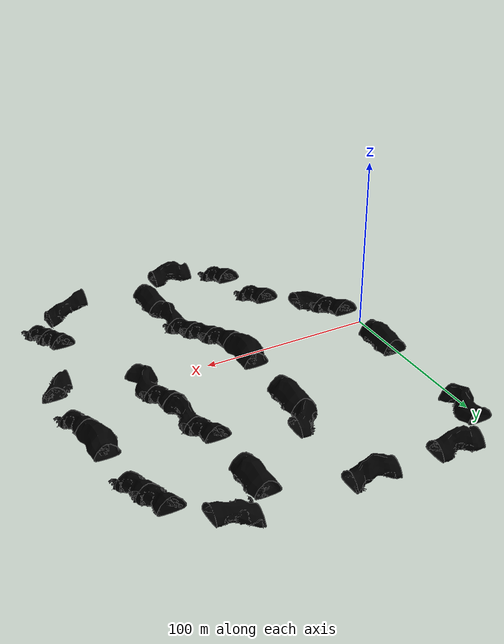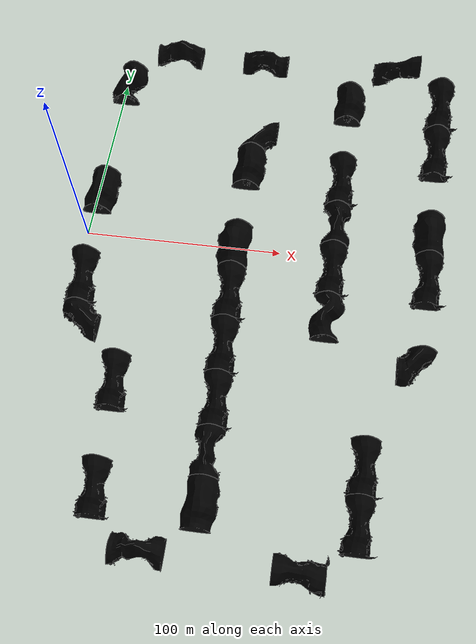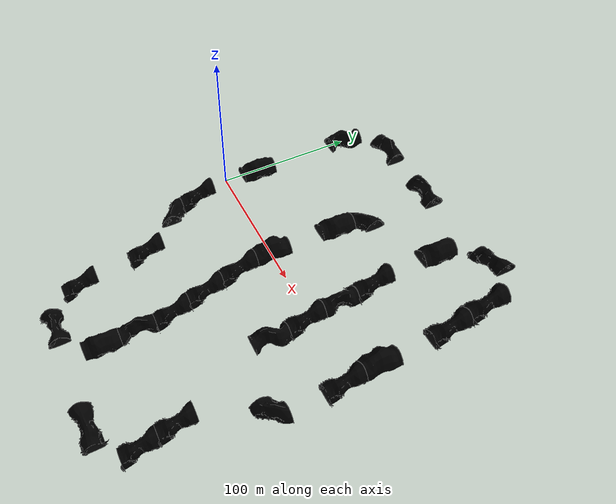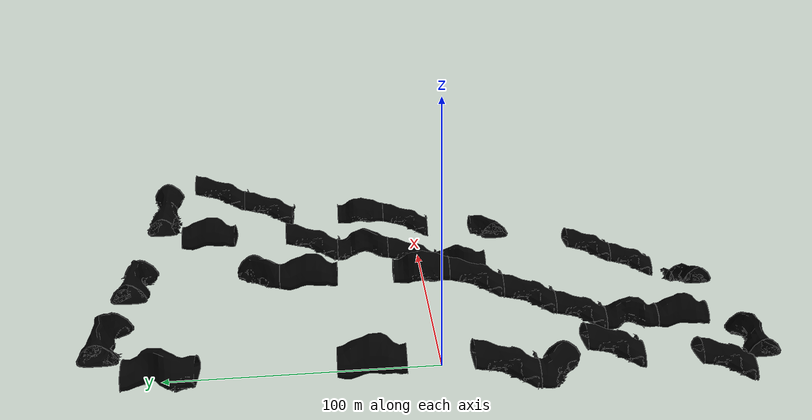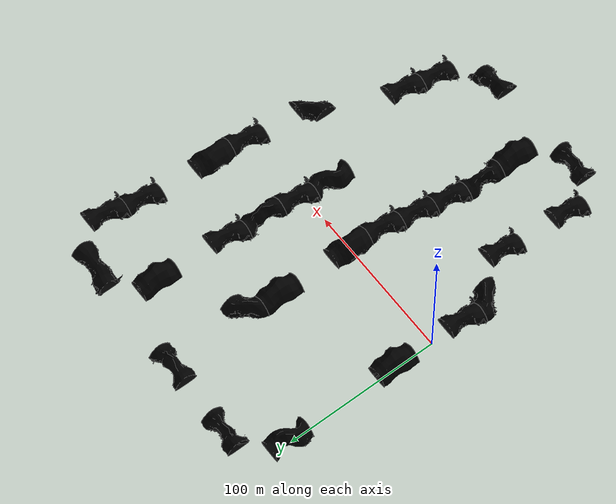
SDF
<sdf version="1.9">
 <world name="cave">
  <physics type="ode">
   <max_step_size>0.004</max_step_size>
   <real_time_factor>1.0</real_time_factor>
   <real_time_update_rate>250</real_time_update_rate>
  </physics>
  <gravity>0 0 -9.8</gravity>
  <magnetic_field>6e-06 2.3e-05 -4.2e-05</magnetic_field>
  <atmosphere type="adiabatic"/>
  <scene>
   <grid>false</grid>
   <ambient>0.1 0.1 0.1 1</ambient>
   <background>0 0 0 1</background>
   <shadows>true</shadows>
  </scene>
  <light name="sunUTC" type="directional">
   <pose>0 0 500 0 -0 0</pose>
   <intensity>1</intensity>
   <direction>0.001 0.625 -0.78</direction>
   <diffuse>0.904 0.904 0.904 1</diffuse>
   <specular>0.271 0.271 0.271 1</specular>
   <attenuation><range>2000</range><linear>0</linear><constant>1</constant><quadratic>0</quadratic></attenuation>
  </light>
  <include>
   <name>tile_3</name>
   <uri>https://fuel.ignitionrobotics.org/1.0/OpenRobotics/models/Cave Straight 02 Type B</uri>
   <pose>27 125.5 -0.28 0 0 1.570796</pose>
  </include>
  <include>
   <name>tile_5</name>
   <uri>https://fuel.ignitionrobotics.org/1.0/OpenRobotics/models/Cave Straight 02 Type B</uri>
   <pose>77 125.5 -0.28 0 0 -1.570796</pose>
  </include>
  <include>
   <name>tile_8</name>
   <uri>https://fuel.ignitionrobotics.org/1.0/OpenRobotics/models/Cave Elevation Type B</uri>
   <pose>152 125.5 -0.28 0 0 1.570796</pose>
  </include>
  <include>
   <name>tile_11</name>
   <uri>https://fuel.ignitionrobotics.org/1.0/OpenRobotics/models/Cave Straight 03 Type B</uri>
   <pose>2 100.5 -0.28 0 0 0.000000</pose>
  </include>
  <include>
   <name>tile_12</name>
   <uri>https://fuel.ignitionrobotics.org/1.0/OpenRobotics/models/Cave Straight 04 Type B</uri>
   <pose>127 100.5 -0.28 0 0 3.141593</pose>
  </include>
  <include>
   <name>tile_13</name>
   <uri>https://fuel.ignitionrobotics.org/1.0/OpenRobotics/models/Cave Elevation Type B</uri>
   <pose>177 100.5 -0.28 0 0 3.141593</pose>
  </include>
  <include>
   <name>tile_15</name>
   <uri>https://fuel.ignitionrobotics.org/1.0/OpenRobotics/models/Cave Corner 02 Type B</uri>
   <pose>77 75.5 -0.28 0 0 -3.141593</pose>
  </include>
  <include>
   <name>tile_18</name>
   <uri>https://fuel.ignitionrobotics.org/1.0/OpenRobotics/models/Cave Elevation Type B</uri>
   <pose>177 75.5 -10.28 0 0 3.141593</pose>
  </include>
  <include>
   <name>tile_20</name>
   <uri>https://fuel.ignitionrobotics.org/1.0/OpenRobotics/models/Cave Straight 04 Type B</uri>
   <pose>77 50.5 -0.28 0 0 3.141593</pose>
  </include>
  <include>
   <name>tile_21</name>
   <uri>https://fuel.ignitionrobotics.org/1.0/OpenRobotics/models/Cave Elevation Type B</uri>
   <pose>127 50.5 -10.28 0 0 3.141593</pose>
  </include>
  <include>
   <name>tile_23</name>
   <uri>https://fuel.ignitionrobotics.org/1.0/OpenRobotics/models/Cave Straight 04 Type B</uri>
   <pose>2 25.5 -0.28 0 0 3.141593</pose>
  </include>
  <include>
   <name>tile_25</name>
   <uri>https://fuel.ignitionrobotics.org/1.0/OpenRobotics/models/Cave Straight 02 Type B</uri>
   <pose>127 25.5 -10.28 0 0 0.000000</pose>
  </include>
  <include>
   <name>tile_26</name>
   <uri>https://fuel.ignitionrobotics.org/1.0/OpenRobotics/models/Cave Straight 04 Type B</uri>
   <pose>177 25.5 -10.28 0 0 0.000000</pose>
  </include>
  <include>
   <name>tile_28</name>
   <uri>https://fuel.ignitionrobotics.org/1.0/OpenRobotics/models/Cave Straight 04 Type B</uri>
   <pose>77 0.5 -0.28 0 0 0.000000</pose>
  </include>
  <include>
   <name>tile_29</name>
   <uri>https://fuel.ignitionrobotics.org/1.0/OpenRobotics/models/Cave Elevation Type B</uri>
   <pose>127 0.5 -20.28 0 0 3.141593</pose>
  </include>
  <include>
   <name>tile_30</name>
   <uri>https://fuel.ignitionrobotics.org/1.0/OpenRobotics/models/Cave Elevation Type B</uri>
   <pose>177 0.5 -20.28 0 0 3.141593</pose>
  </include>
  <include>
   <name>tile_31</name>
   <uri>https://fuel.ignitionrobotics.org/1.0/OpenRobotics/models/Cave Elevation Type B</uri>
   <pose>2 -24.5 -10.28 0 0 3.141593</pose>
  </include>
  <include>
   <name>tile_32</name>
   <uri>https://fuel.ignitionrobotics.org/1.0/OpenRobotics/models/Cave Elevation Type B</uri>
   <pose>77 -24.5 -10.28 0 0 3.141593</pose>
  </include>
  <include>
   <name>tile_33</name>
   <uri>https://fuel.ignitionrobotics.org/1.0/OpenRobotics/models/Cave Straight 03 Type B</uri>
   <pose>127 -24.5 -20.28 0 0 3.141593</pose>
  </include>
  <include>
   <name>tile_35</name>
   <uri>https://fuel.ignitionrobotics.org/1.0/OpenRobotics/models/Cave Corner 02 Type B</uri>
   <pose>2 -49.5 -10.28 0 0 -1.570796</pose>
  </include>
  <include>
   <name>tile_37</name>
   <uri>https://fuel.ignitionrobotics.org/1.0/OpenRobotics/models/Cave Elevation Type B</uri>
   <pose>77 -49.5 -20.28 0 0 3.141593</pose>
  </include>
  <include>
   <name>tile_40</name>
   <uri>https://fuel.ignitionrobotics.org/1.0/OpenRobotics/models/Cave Corner 02 Type B</uri>
   <pose>177 -49.5 -20.28 0 0 0.000000</pose>
  </include>
  <include>
   <name>tile_41</name>
   <uri>https://fuel.ignitionrobotics.org/1.0/OpenRobotics/models/Cave Elevation Type B</uri>
   <pose>27 -74.5 -20.28 0 0 3.141593</pose>
  </include>
  <include>
   <name>tile_42</name>
   <uri>https://fuel.ignitionrobotics.org/1.0/OpenRobotics/models/Cave Elevation Type B</uri>
   <pose>77 -74.5 -30.28 0 0 3.141593</pose>
  </include>
  <include>
   <name>tile_45</name>
   <uri>https://fuel.ignitionrobotics.org/1.0/OpenRobotics/models/Cave Straight 02 Type B</uri>
   <pose>77 -99.5 -30.28 0 0 3.141593</pose>
  </include>
  <include>
   <name>tile_46</name>
   <uri>https://fuel.ignitionrobotics.org/1.0/OpenRobotics/models/Cave Elevation Type B</uri>
   <pose>152 -99.5 -30.28 0 0 3.141593</pose>
  </include>
  <include>
   <name>tile_47</name>
   <uri>https://fuel.ignitionrobotics.org/1.0/OpenRobotics/models/Cave Elevation Type B</uri>
   <pose>27 -124.5 -30.28 0 0 3.141593</pose>
  </include>
  <include>
   <name>tile_48</name>
   <uri>https://fuel.ignitionrobotics.org/1.0/OpenRobotics/models/Cave Straight 04 Type B</uri>
   <pose>77 -124.5 -30.28 0 0 3.141593</pose>
  </include>
  <include>
   <name>tile_49</name>
   <uri>https://fuel.ignitionrobotics.org/1.0/OpenRobotics/models/Cave Elevation Type B</uri>
   <pose>152 -124.5 -40.28 0 0 3.141593</pose>
  </include>
  <include>
   <name>tile_51</name>
   <uri>https://fuel.ignitionrobotics.org/1.0/OpenRobotics/models/Cave Straight 02 Type B</uri>
   <pose>52 -149.5 -30.28 0 0 1.570796</pose>
  </include>
  <include>
   <name>tile_54</name>
   <uri>https://fuel.ignitionrobotics.org/1.0/OpenRobotics/models/Cave Elevation Type B</uri>
   <pose>127 -149.5 -40.28 0 0 -1.570796</pose>
  </include>
  <spherical_coordinates>
   <surface_model>EARTH_WGS84</surface_model>
   <world_frame_orientation>ENU</world_frame_orientation>
   <latitude_deg>47.397971057728974</latitude_deg>
   <longitude_deg>8.546163739800146</longitude_deg>
   <elevation>0</elevation>
  </spherical_coordinates>
 </world>
</sdf>

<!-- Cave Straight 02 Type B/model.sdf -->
<sdf version="1.6">
  <model name="Cave Straight 02 Type B">
    <static>true</static>
    <link name="base_link">
      <collision name="collision">
        <pose>0 0 0 0 0 0</pose>
        <geometry>
          <mesh>
            <uri>model://Cave Straight 02 Type B/meshes/cavestraight02.dae</uri>
            <scale>1.005 1.005 1.0</scale>
          </mesh>
        </geometry>
      </collision>
      <visual name="StriatedRock_visual">
        <geometry>
          <mesh>
            <uri>model://Cave Straight 02 Type B/meshes/cavestraight02.dae</uri>
            <scale>1.005 1.005 1.0</scale>
            <submesh>
              <name>StriatedRock</name>
              <center>false</center>
            </submesh>
          </mesh>
        </geometry>
        <material>
          <diffuse>0 0 0 1</diffuse>
          <specular>0 0 0 1</specular>
          <pbr>
            <metal>
              <albedo_map>model://Cave Straight 02 Type B/materials/textures/StriatedRock_Albedo.png</albedo_map>
              <normal_map>model://Cave Straight 02 Type B/materials/textures/StriatedRock_Normal.png</normal_map>
              <roughness_map>model://Cave Straight 02 Type B/materials/textures/StriatedRock_Roughness.png</roughness_map>
            </metal>
          </pbr>

          <script>
            <uri>model://Cave Straight 02 Type B/materials/scripts/</uri>
            <uri>model://Cave Straight 02 Type B/materials/textures/</uri>
            <name>CaveTile/StriatedRock_Diffuse</name>
          </script>
        </material>
      </visual>
      <visual name="RockPile_visual">
        <geometry>
          <mesh>
            <uri>model://Cave Straight 02 Type B/meshes/cavestraight02.dae</uri>
            <scale>1.005 1.005 1.0</scale>
            <submesh>
              <name>RockPile</name>
              <center>false</center>
            </submesh>
          </mesh>
        </geometry>
        <material>
          <diffuse>0 0 0 1</diffuse>
          <specular>0 0 0 1</specular>
          <pbr>
            <metal>
              <albedo_map>model://Cave Straight 02 Type B/materials/textures/RockPile_Albedo.png</albedo_map>
              <normal_map>model://Cave Straight 02 Type B/materials/textures/RockPile_Normal.png</normal_map>
              <roughness_map>model://Cave Straight 02 Type B/materials/textures/RockPile_Roughness.png</roughness_map>
            </metal>
          </pbr>

          <script>
            <uri>model://Cave Straight 02 Type B/materials/scripts/</uri>
            <uri>model://Cave Straight 02 Type B/materials/textures/</uri>
            <name>CaveTile/RockPile_Diffuse</name>
          </script>
        </material>
      </visual>
      <visual name="CaveWall_visual">
        <geometry>
          <mesh>
            <uri>model://Cave Straight 02 Type B/meshes/cavestraight02.dae</uri>
            <scale>1.005 1.005 1.0</scale>
            <submesh>
              <name>CaveWall</name>
              <center>false</center>
            </submesh>
          </mesh>
        </geometry>
        <material>
          <diffuse>0 0 0 1</diffuse>
          <specular>0 0 0 1</specular>
          <pbr>
            <metal>
              <albedo_map>model://Cave Straight 02 Type B/materials/textures/CaveWall_Albedo.png</albedo_map>
              <normal_map>model://Cave Straight 02 Type B/materials/textures/CaveWall_Normal.png</normal_map>
              <roughness_map>model://Cave Straight 02 Type B/materials/textures/CaveWall_Roughness.png</roughness_map>
            </metal>
          </pbr>

          <script>
            <uri>model://Cave Straight 02 Type B/materials/scripts/</uri>
            <uri>model://Cave Straight 02 Type B/materials/textures/</uri>
            <name>CaveTile/CaveWall_Diffuse</name>
          </script>
        </material>
      </visual>
    </link>
  </model>
</sdf>

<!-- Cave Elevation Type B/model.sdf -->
<sdf version="1.6">
  <model name="Cave Elevation Type B">
    <static>true</static>
    <link name="base_link">
      <collision name="collision">
        <pose>0 0 0 0 0 0</pose>
        <geometry>
          <mesh>
            <uri>model://Cave Elevation Type B/meshes/caveelevation.dae</uri>
            <scale>1.0 1.0 1.0</scale>
          </mesh>
        </geometry>
      </collision>
      <visual name="CaveWall_visual">
        <geometry>
          <mesh>
            <uri>model://Cave Elevation Type B/meshes/caveelevation.dae</uri>
            <submesh>
              <name>CaveWall</name>
              <center>false</center>
            </submesh>
          </mesh>
        </geometry>
        <material>
          <diffuse>0 0 0 1</diffuse>
          <specular>0 0 0 1</specular>
          <pbr>
            <metal>
              <albedo_map>model://Cave Elevation Type B/materials/textures/CaveWall_Albedo.png</albedo_map>
              <normal_map>model://Cave Elevation Type B/materials/textures/CaveWall_Normal.png</normal_map>
              <roughness_map>model://Cave Elevation Type B/materials/textures/CaveWall_Roughness.png</roughness_map>
            </metal>
          </pbr>

          <script>
            <uri>model://Cave Elevation Type B/materials/scripts/</uri>
            <uri>model://Cave Elevation Type B/materials/textures/</uri>
            <name>CaveTile/CaveWall_Diffuse</name>
          </script>
        </material>
      </visual>
      <visual name="RockPile_visual">
        <geometry>
          <mesh>
            <uri>model://Cave Elevation Type B/meshes/caveelevation.dae</uri>
            <submesh>
              <name>RockPile</name>
              <center>false</center>
            </submesh>
          </mesh>
        </geometry>
        <material>
          <diffuse>0 0 0 1</diffuse>
          <specular>0 0 0 1</specular>
          <pbr>
            <metal>
              <albedo_map>model://Cave Elevation Type B/materials/textures/RockPile_Albedo.png</albedo_map>
              <normal_map>model://Cave Elevation Type B/materials/textures/RockPile_Normal.png</normal_map>
              <roughness_map>model://Cave Elevation Type B/materials/textures/RockPile_Roughness.png</roughness_map>
            </metal>
          </pbr>

          <script>
            <uri>model://Cave Elevation Type B/materials/scripts/</uri>
            <uri>model://Cave Elevation Type B/materials/textures/</uri>
            <name>CaveTile/RockPile_Diffuse</name>
          </script>
        </material>
      </visual>
      <visual name="StriatedRock_visual">
        <geometry>
          <mesh>
            <uri>model://Cave Elevation Type B/meshes/caveelevation.dae</uri>
            <submesh>
              <name>StriatedRock</name>
              <center>false</center>
            </submesh>
          </mesh>
        </geometry>
        <material>
          <diffuse>0 0 0 1</diffuse>
          <specular>0 0 0 1</specular>
          <pbr>
            <metal>
              <albedo_map>model://Cave Elevation Type B/materials/textures/StriatedRock_Albedo.png</albedo_map>
              <normal_map>model://Cave Elevation Type B/materials/textures/StriatedRock_Normal.png</normal_map>
              <roughness_map>model://Cave Elevation Type B/materials/textures/StriatedRock_Roughness.png</roughness_map>
            </metal>
          </pbr>

          <script>
            <uri>model://Cave Elevation Type B/materials/scripts/</uri>
            <uri>model://Cave Elevation Type B/materials/textures/</uri>
            <name>CaveTile/StriatedRock_Diffuse</name>
          </script>
        </material>
      </visual>
    </link>

    <plugin filename="libignition-gazebo-performer-detector-system.so" name="ignition::gazebo::systems::PerformerDetector">
      <topic>/subt_performer_detector</topic>
      <pose>0 0 10 0 0 0</pose>
      <geometry>
        <box>
          <size>20 30 20</size>
        </box>
      </geometry>
      <header_data>
        <key>type</key>
        <value>elevation</value>
      </header_data>
    </plugin>
  </model>
</sdf>

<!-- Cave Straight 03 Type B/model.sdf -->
<sdf version="1.6">
  <model name="Cave Straight 03 Type B">
    <static>true</static>
    <link name="base_link">
      <collision name="collision">
        <pose>0 0 0 0 0 0</pose>
        <geometry>
          <mesh>
            <uri>model://Cave Straight 03 Type B/meshes/cavestraight03.dae</uri>
            <scale>1.005 1.005 1.0</scale>
          </mesh>
        </geometry>
      </collision>
      <visual name="StriatedRock_visual">
        <geometry>
          <mesh>
            <uri>model://Cave Straight 03 Type B/meshes/cavestraight03.dae</uri>
            <submesh>
              <name>StriatedRock</name>
              <center>false</center>
            </submesh>
            <scale>1.005 1.005 1.0</scale>
          </mesh>
        </geometry>
        <material>
          <diffuse>0 0 0 1</diffuse>
          <specular>0 0 0 1</specular>
          <pbr>
            <metal>
              <albedo_map>model://Cave Straight 03 Type B/materials/textures/StriatedRock_Albedo.png</albedo_map>
              <normal_map>model://Cave Straight 03 Type B/materials/textures/StriatedRock_Normal.png</normal_map>
              <roughness_map>model://Cave Straight 03 Type B/materials/textures/StriatedRock_Roughness.png</roughness_map>
            </metal>
          </pbr>

          <script>
            <uri>model://Cave Straight 03 Type B/materials/scripts/</uri>
            <uri>model://Cave Straight 03 Type B/materials/textures/</uri>
            <name>CaveTile/StriatedRock_Diffuse</name>
          </script>
        </material>
      </visual>
      <visual name="RockPile_visual">
        <geometry>
          <mesh>
            <uri>model://Cave Straight 03 Type B/meshes/cavestraight03.dae</uri>
            <submesh>
              <name>RockPile</name>
              <center>false</center>
            </submesh>
            <scale>1.005 1.005 1.0</scale>
          </mesh>
        </geometry>
        <material>
          <diffuse>0 0 0 1</diffuse>
          <specular>0 0 0 1</specular>
          <pbr>
            <metal>
              <albedo_map>model://Cave Straight 03 Type B/materials/textures/RockPile_Albedo.png</albedo_map>
              <normal_map>model://Cave Straight 03 Type B/materials/textures/RockPile_Normal.png</normal_map>
              <roughness_map>model://Cave Straight 03 Type B/materials/textures/RockPile_Roughness.png</roughness_map>
            </metal>
          </pbr>

          <script>
            <uri>model://Cave Straight 03 Type B/materials/scripts/</uri>
            <uri>model://Cave Straight 03 Type B/materials/textures/</uri>
            <name>CaveTile/RockPile_Diffuse</name>
          </script>
        </material>
      </visual>
      <visual name="CaveWall_visual">
        <geometry>
          <mesh>
            <uri>model://Cave Straight 03 Type B/meshes/cavestraight03.dae</uri>
            <submesh>
              <name>CaveWall</name>
              <center>false</center>
            </submesh>
            <scale>1.005 1.005 1.0</scale>
          </mesh>
        </geometry>
        <material>
          <diffuse>0 0 0 1</diffuse>
          <specular>0 0 0 1</specular>
          <pbr>
            <metal>
              <albedo_map>model://Cave Straight 03 Type B/materials/textures/CaveWall_Albedo.png</albedo_map>
              <normal_map>model://Cave Straight 03 Type B/materials/textures/CaveWall_Normal.png</normal_map>
              <roughness_map>model://Cave Straight 03 Type B/materials/textures/CaveWall_Roughness.png</roughness_map>
            </metal>
          </pbr>

          <script>
            <uri>model://Cave Straight 03 Type B/materials/scripts/</uri>
            <uri>model://Cave Straight 03 Type B/materials/textures/</uri>
            <name>CaveTile/CaveWall_Diffuse</name>
          </script>
        </material>
      </visual>
    </link>
  </model>
</sdf>

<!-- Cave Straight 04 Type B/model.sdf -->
<sdf version="1.6">
  <model name="Cave Straight 04 Type B">
    <static>true</static>
    <link name="base_link">
      <collision name="collision">
        <pose>0 0 0 0 0 0</pose>
        <geometry>
          <mesh>
            <uri>model://Cave Straight 04 Type B/meshes/cavestraight04.dae</uri>
            <scale>1.0 1.0 1.0</scale>
          </mesh>
        </geometry>
      </collision>
      <visual name="StriatedRock_visual">
        <geometry>
          <mesh>
            <uri>model://Cave Straight 04 Type B/meshes/cavestraight04.dae</uri>
            <submesh>
              <name>StriatedRock</name>
              <center>false</center>
            </submesh>
          </mesh>
        </geometry>
        <material>
          <diffuse>0 0 0 1</diffuse>
          <specular>0 0 0 1</specular>
          <pbr>
            <metal>
              <albedo_map>model://Cave Straight 04 Type B/materials/textures/StriatedRock_Albedo.png</albedo_map>
              <normal_map>model://Cave Straight 04 Type B/materials/textures/StriatedRock_Normal.png</normal_map>
              <roughness_map>model://Cave Straight 04 Type B/materials/textures/StriatedRock_Roughness.png</roughness_map>
            </metal>
          </pbr>

          <script>
            <uri>model://Cave Straight 04 Type B/materials/scripts/</uri>
            <uri>model://Cave Straight 04 Type B/materials/textures/</uri>
            <name>CaveTile/StriatedRock_Diffuse</name>
          </script>
        </material>
      </visual>
      <visual name="RockPile_visual">
        <geometry>
          <mesh>
            <uri>model://Cave Straight 04 Type B/meshes/cavestraight04.dae</uri>
            <submesh>
              <name>RockPile</name>
              <center>false</center>
            </submesh>
          </mesh>
        </geometry>
        <material>
          <diffuse>0 0 0 1</diffuse>
          <specular>0 0 0 1</specular>
          <pbr>
            <metal>
              <albedo_map>model://Cave Straight 04 Type B/materials/textures/RockPile_Albedo.png</albedo_map>
              <normal_map>model://Cave Straight 04 Type B/materials/textures/RockPile_Normal.png</normal_map>
              <roughness_map>model://Cave Straight 04 Type B/materials/textures/RockPile_Roughness.png</roughness_map>
            </metal>
          </pbr>

          <script>
            <uri>model://Cave Straight 04 Type B/materials/scripts/</uri>
            <uri>model://Cave Straight 04 Type B/materials/textures/</uri>
            <name>CaveTile/RockPile_Diffuse</name>
          </script>
        </material>
      </visual>
      <visual name="CaveWall_visual">
        <geometry>
          <mesh>
            <uri>model://Cave Straight 04 Type B/meshes/cavestraight04.dae</uri>
            <submesh>
              <name>CaveWall</name>
              <center>false</center>
            </submesh>
          </mesh>
        </geometry>
        <material>
          <diffuse>0 0 0 1</diffuse>
          <specular>0 0 0 1</specular>
          <pbr>
            <metal>
              <albedo_map>model://Cave Straight 04 Type B/materials/textures/CaveWall_Albedo.png</albedo_map>
              <normal_map>model://Cave Straight 04 Type B/materials/textures/CaveWall_Normal.png</normal_map>
              <roughness_map>model://Cave Straight 04 Type B/materials/textures/CaveWall_Roughness.png</roughness_map>
            </metal>
          </pbr>

          <script>
            <uri>model://Cave Straight 04 Type B/materials/scripts/</uri>
            <uri>model://Cave Straight 04 Type B/materials/textures/</uri>
            <name>CaveTile/CaveWall_Diffuse</name>
          </script>
        </material>
      </visual>
    </link>
  </model>
</sdf>

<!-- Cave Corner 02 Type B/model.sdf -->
<sdf version="1.6">
  <model name="Cave Corner 02 Type B">
    <static>true</static>
    <link name="base_link">
      <collision name="collision">
        <pose>0 0 0 0 0 0</pose>
        <geometry>
          <mesh>
            <uri>model://cave_corner_02/meshes/cavecorner02.dae</uri>
            <scale>1.005 1.005 1.0</scale>
          </mesh>
        </geometry>
      </collision>
      <visual name="CaveWall_visual">
        <geometry>
          <mesh>
            <uri>model://cave_corner_02/meshes/cavecorner02.dae</uri>
            <submesh>
              <name>CaveWall</name>
              <center>false</center>
            </submesh>
            <scale>1.005 1.005 1.0</scale>
          </mesh>
        </geometry>
        <material>
          <diffuse>0 0 0 1</diffuse>
          <specular>0 0 0 1</specular>
          <pbr>
            <metal>
              <albedo_map>model://cave_corner_02/materials/textures/CaveWall_Albedo.png</albedo_map>
              <normal_map>model://cave_corner_02/materials/textures/CaveWall_Normal.png</normal_map>
              <roughness_map>model://cave_corner_02/materials/textures/CaveWall_Roughness.png</roughness_map>
            </metal>
          </pbr>

          <script>
            <uri>model://cave_corner_02/materials/scripts/</uri>
            <uri>model://cave_corner_02/materials/textures/</uri>
            <name>CaveTile/CaveWall_Diffuse</name>
          </script>
        </material>
      </visual>
      <visual name="StriatedRock_visual">
        <geometry>
          <mesh>
            <uri>model://cave_corner_02/meshes/cavecorner02.dae</uri>
            <submesh>
              <name>StriatedRock</name>
              <center>false</center>
            </submesh>
            <scale>1.005 1.005 1.0</scale>
          </mesh>
        </geometry>
        <material>
          <diffuse>0 0 0 1</diffuse>
          <specular>0 0 0 1</specular>
          <pbr>
            <metal>
              <albedo_map>model://cave_corner_02/materials/textures/StriatedRock_Albedo.png</albedo_map>
              <normal_map>model://cave_corner_02/materials/textures/StriatedRock_Normal.png</normal_map>
              <roughness_map>model://cave_corner_02/materials/textures/StriatedRock_Roughness.png</roughness_map>
            </metal>
          </pbr>

          <script>
            <uri>model://cave_corner_02/materials/scripts/</uri>
            <uri>model://cave_corner_02/materials/textures/</uri>
            <name>CaveTile/StriatedRock_Diffuse</name>
          </script>
        </material>
      </visual>
      <visual name="RockPile_visual">
        <geometry>
          <mesh>
            <uri>model://cave_corner_02/meshes/cavecorner02.dae</uri>
            <submesh>
              <name>RockPile</name>
              <center>false</center>
            </submesh>
            <scale>1.005 1.005 1.0</scale>
          </mesh>
        </geometry>
        <material>
          <diffuse>0 0 0 1</diffuse>
          <specular>0 0 0 1</specular>
          <pbr>
            <metal>
              <albedo_map>model://cave_corner_02/materials/textures/RockPile_Albedo.png</albedo_map>
              <normal_map>model://cave_corner_02/materials/textures/RockPile_Normal.png</normal_map>
              <roughness_map>model://cave_corner_02/materials/textures/RockPile_Roughness.png</roughness_map>
            </metal>
          </pbr>

          <script>
            <uri>model://cave_corner_02/materials/scripts/</uri>
            <uri>model://cave_corner_02/materials/textures/</uri>
            <name>CaveTile/RockPile_Diffuse</name>
          </script>
        </material>
      </visual>
    </link>
  </model>
</sdf>
